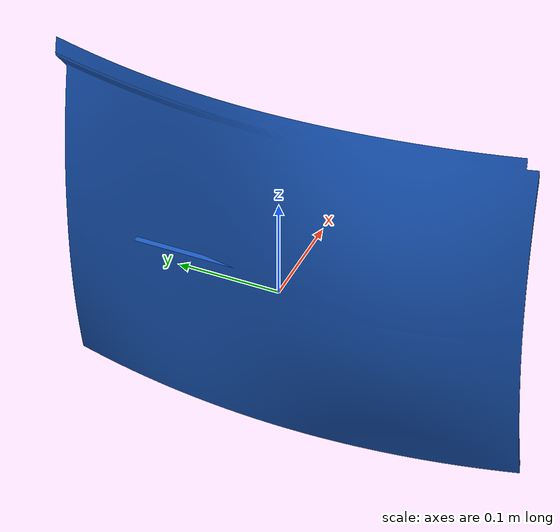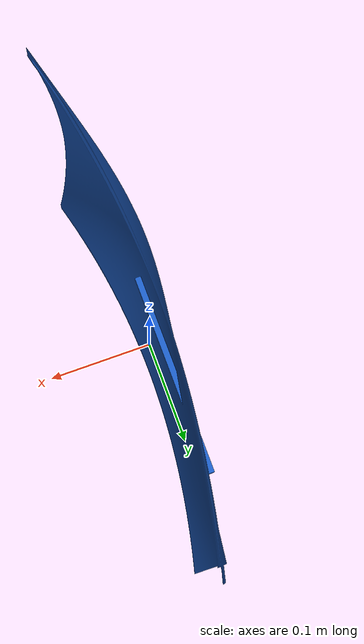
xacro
<?xml version="1.0"?>
<robot name="spray_workpiece" xmlns:xacro="http://ros.org/wiki/xacro">

  <xacro:arg name="object_type" default="automotive_fender_panel"/>
  <xacro:property name="type" value="$(arg object_type)"/>
  <xacro:property name="mesh_dir" value="package://cr5_spray_sim/meshes/workpieces"/>

  <!-- Color palette -->
  <material name="wp_body_blue">
    <color rgba="0.10 0.35 0.75 1"/>
  </material>
  <material name="wp_accent_orange">
    <color rgba="0.92 0.45 0.08 1"/>
  </material>

  <!-- Object frame at geometric center -->
  <link name="object_frame"/>

  <!-- ===== Mesh-based workpiece body ===== -->
  <link name="object_body">
    <inertial>
      <mass value="0.8"/>
      <inertia ixx="0.01" ixy="0" ixz="0" iyy="0.01" iyz="0" izz="0.005"/>
    </inertial>

    <visual name="wp_visual">
      <origin xyz="0 0 0" rpy="0 0 0"/>
      <geometry>
        <mesh filename="${mesh_dir}/${type}_visual.stl" scale="1 1 1"/>
      </geometry>
      <material name="wp_body_blue"/>
    </visual>

    <collision name="wp_collision">
      <origin xyz="0 0 0" rpy="0 0 0"/>
      <geometry>
        <mesh filename="${mesh_dir}/${type}_collision.stl" scale="1 1 1"/>
      </geometry>
    </collision>
  </link>

  <joint name="object_frame_to_body" type="fixed">
    <parent link="object_frame"/>
    <child link="object_body"/>
  </joint>

  <gazebo><static>true</static></gazebo>
</robot>
